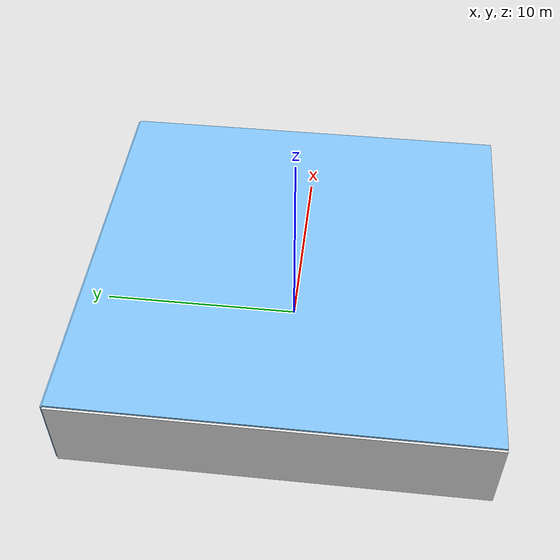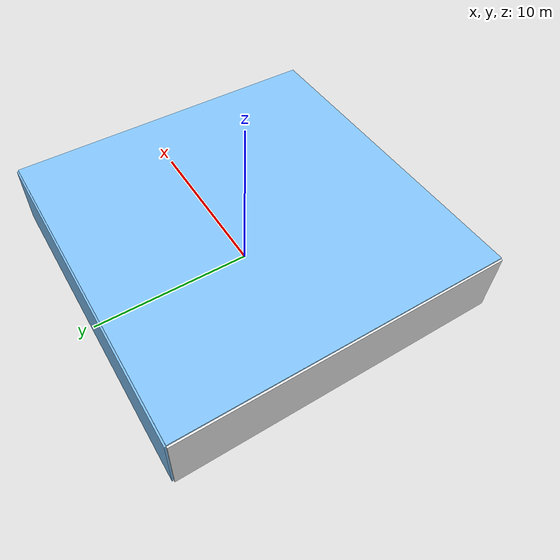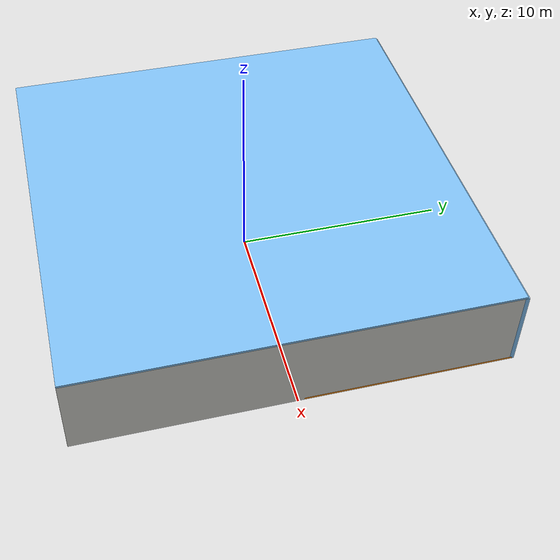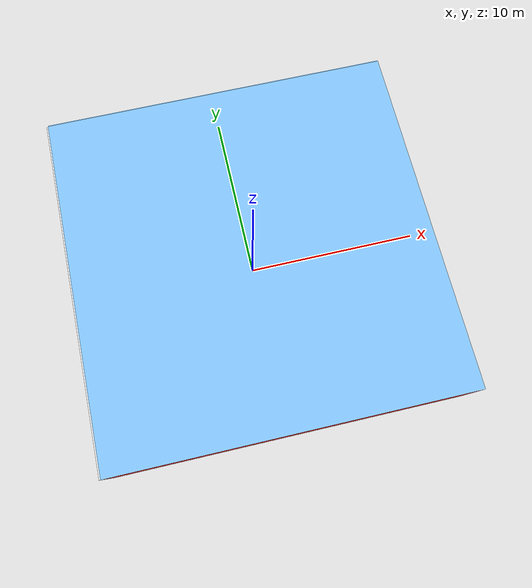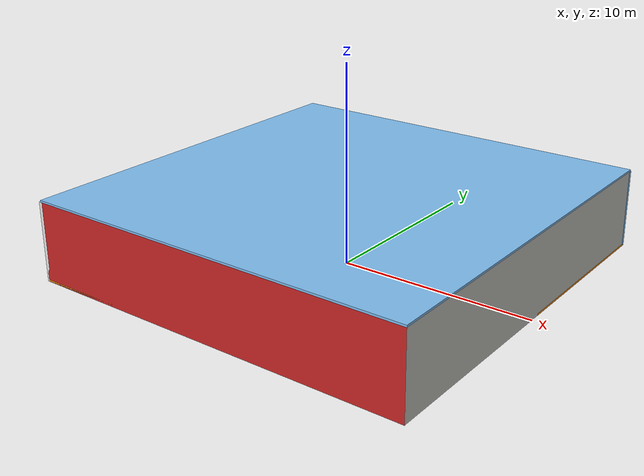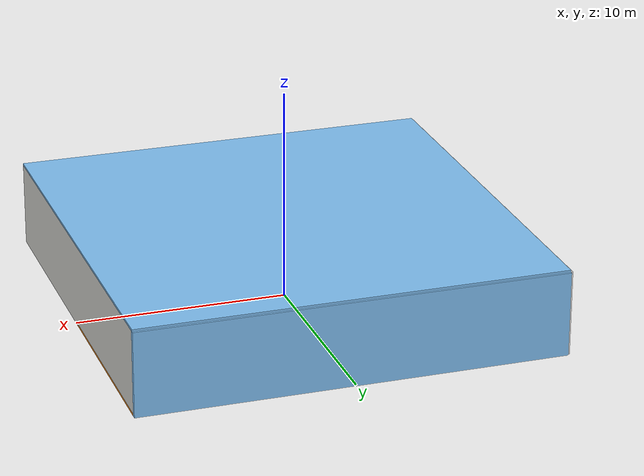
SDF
<sdf version="1.4">
 <world name="default">
  <physics type="ode">
   <max_step_size>0.001</max_step_size>
   <real_time_factor>1</real_time_factor>
   <real_time_update_rate>1000</real_time_update_rate>
   <gravity>0 0 -9.8</gravity>
  </physics>
  <scene><ambient>0.4 0.4 0.4 1</ambient><background>0.7 0.7 0.7 1</background><shadows>1</shadows></scene>
  <model name="Surrounding">
   <static>1</static>
   <link name="Ceiling">
    <collision name="Ceiling_Collision"><geometry><box><size>20 20 0.1</size></box></geometry></collision>
    <visual name="Ceiling_Visual">
     <geometry><box><size>20 20 0.1</size></box></geometry>
     <material>
      <script><uri>file://media/materials/scripts/gazebo.material</uri><name>Gazebo/SkyBlue</name></script>
     </material>
    </visual>
    <pose>0 0 4.05 0 0 0</pose>
   </link>
   <link name="Wall_South">
    <collision name="Wall_South_Collision">
     <geometry><box><size>20 0 4</size></box></geometry>
     <pose>0 0 2 0 -0 0</pose>
    </collision>
    <visual name="Wall_South_Visual">
     <pose>0 0 2 0 -0 0</pose>
     <geometry><box><size>20 0 4</size></box></geometry>
     <material>
      <script><uri>file://media/materials/scripts/gazebo.material</uri><name>Gazebo/Red</name></script>
     </material>
    </visual>
    <velocity_decay><linear>0</linear><angular>0</angular></velocity_decay>
    <pose>0 -10 0 0 -0 0</pose>
   </link>
   <link name="Wall_East">
    <collision name="Wall_21_Collision">
     <geometry><box><size>20 0 4</size></box></geometry>
     <pose>0 0 2 0 -0 0</pose>
    </collision>
    <visual name="Wall_21_Visual">
     <pose>0 0 2 0 -0 0</pose>
     <geometry><box><size>20 0 4</size></box></geometry>
     <material>
      <script><uri>file://media/materials/scripts/gazebo.material</uri><name>Gazebo/CeilingTiled</name></script>
     </material>
    </visual>
    <velocity_decay><linear>0</linear><angular>0</angular></velocity_decay>
    <pose>10 0 0 0 -0 1.5708</pose>
   </link>
   <link name="Wall_North">
    <collision name="Wall_22_Collision">
     <geometry><box><size>20 0.2 4</size></box></geometry>
     <pose>0 0 2 0 -0 0</pose>
    </collision>
    <visual name="Wall_22_Visual">
     <pose>0 0 2 0 -0 0</pose>
     <geometry><box><size>20 0.2 4</size></box></geometry>
     <material>
      <script><uri>file://media/materials/scripts/gazebo.material</uri><name>Gazebo/SkyBlue</name></script>
     </material>
    </visual>
    <velocity_decay><linear>0</linear><angular>0</angular></velocity_decay>
    <pose>0 10 0 0 -0 0</pose>
   </link>
   <link name="Wall_West">
    <collision name="Wall_23_Collision">
     <geometry><box><size>20 0.2 4</size></box></geometry>
     <pose>0 0 2 0 -0 0</pose>
    </collision>
    <visual name="Wall_23_Visual">
     <pose>0 0 2 0 -0 0</pose>
     <geometry><box><size>20 0.2 4</size></box></geometry>
     <material>
      <script><uri>file://media/materials/scripts/gazebo.material</uri><name>Gazebo/White</name></script>
     </material>
    </visual>
    <velocity_decay><linear>0</linear><angular>0</angular></velocity_decay>
    <pose>-10 0 0 0 0 -1.5708</pose>
   </link>
   <link name="Ground_link">
    <collision name="collision">
     <pose>0 0 .05 0 -0 0</pose>
     <geometry><box><size>20 20 0.1</size></box></geometry>
    </collision>
    <visual name="visual">
     <pose>0 0 .05 0 -0 0</pose>
     <geometry><box><size>20 20 0.1</size></box></geometry>
     <material>
      <script><uri>file://media/materials/scripts/gazebo.material</uri><name>Gazebo/Orange</name></script>
     </material>
    </visual>
   </link>
   <static>1</static>
  </model>
  <spherical_coordinates>
   <surface_model>EARTH_WGS84</surface_model>
   <latitude_deg>0</latitude_deg>
   <longitude_deg>0</longitude_deg>
   <elevation>0</elevation>
   <heading_deg>0</heading_deg>
  </spherical_coordinates>
  <light name="lightball_0" type="diffuse">
   <diffuse>0.8 0.8 0.8 1</diffuse>
   <specular>0.2 0.2 0.2 1</specular>
   <attenuation>
    <range>100</range>
    <constant>0.7</constant>
    <linear>0.01</linear>
    <quadratic>0.001</quadratic>
   </attenuation>
   <direction>-0.5 0.1 -0.9</direction>
   <pose>4.27616232386 0.127041661639 3.37777754991 0 0 0</pose>
  </light>
  <light name="lightball_1" type="diffuse">
   <diffuse>0.8 0.8 0.8 1</diffuse>
   <specular>0.2 0.2 0.2 1</specular>
   <attenuation>
    <range>100</range>
    <constant>0.7</constant>
    <linear>0.01</linear>
    <quadratic>0.001</quadratic>
   </attenuation>
   <direction>-0.5 0.1 -0.9</direction>
   <pose>5.62962803652 -5.85556876159 3.06437448426 0 0 0</pose>
  </light>
  <light name="lightball_2" type="diffuse">
   <diffuse>0.8 0.8 0.8 1</diffuse>
   <specular>0.2 0.2 0.2 1</specular>
   <attenuation>
    <range>100</range>
    <constant>0.7</constant>
    <linear>0.01</linear>
    <quadratic>0.001</quadratic>
   </attenuation>
   <direction>-0.5 0.1 -0.9</direction>
   <pose>8.94708337289 -3.64532716017 2.68082275018 0 0 0</pose>
  </light>
  <include>
   <uri>model://textured_shapes</uri>
   <pose>-6.37527620949 -6.46442296126 0 0 0 2.33806716322</pose>
  </include>
  <include>
   <uri>model://construction_cone</uri>
   <pose>-8.09847477379 -5.52531916651 0 0 0 2.68245540514</pose>
  </include>
  <include><uri>model://table</uri><pose>-5.5293775379 -3.57821443683 0 0 0 1.51649525775</pose></include>
  <include>
   <uri>model://robocup_3Dsim_goal</uri>
   <pose>-4.23914134527 1.40276297698 0 0 0 1.78112390745</pose>
  </include>
  <include><uri>model://cabinet</uri><pose>-1.23151926577 -6.81844561439 0 0 0 1.70790803854</pose></include>
  <include><uri>model://cabinet</uri><pose>-1.15402524809 3.40495074231 0 0 0 2.31181734437</pose></include>
  <include>
   <uri>model://textured_shapes</uri>
   <pose>4.6202773755 -1.0636357746 0 0 0 2.23239061507</pose>
  </include>
  <include>
   <uri>model://construction_cone</uri>
   <pose>5.22670940891 2.44839570205 0 0 0 0.35673728155</pose>
  </include>
 </world>
</sdf>

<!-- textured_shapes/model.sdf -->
<sdf version="1.6">
  <model name="textured_shapes">
    <pose>0 0 0.5 0 0 0</pose>
    <link name="box">
      <pose>0 -1.5 0 0 0 0</pose>
      <collision name="collision">
        <geometry>
          <box>
            <size>1 1 1</size>
          </box>
        </geometry>
      </collision>
      <visual name="visual">
        <geometry>
          <box>
            <size>1 1 1</size>
          </box>
        </geometry>
        <material>
          <script>
            <uri>model://../model_source/models/textured_shapes/materials/scripts</uri>
            <uri>model://../model_source/models/textured_shapes/materials/textures</uri>
            <name>TexturedShape/Squares</name>
          </script>
        </material>
      </visual>
    </link>
    <link name="sphere">
      <collision name="collision">
        <geometry>
          <sphere>
            <radius>0.5</radius>
          </sphere>
        </geometry>
      </collision>
      <visual name="visual">
        <geometry>
          <sphere>
            <radius>0.5</radius>
          </sphere>
        </geometry>
        <material>
          <script>
            <uri>model://../model_source/models/textured_shapes/materials/scripts</uri>
            <uri>model://../model_source/models/textured_shapes/materials/textures</uri>
            <name>TexturedShape/Squares</name>
          </script>
        </material>
      </visual>
    </link>
    <link name="cylinder">
      <pose>0 1.5 0 0 0 0</pose>
      <collision name="collision">
        <geometry>
          <cylinder>
            <radius>0.5</radius>
            <length>1</length>
          </cylinder>
        </geometry>
      </collision>
      <visual name="visual">
        <geometry>
          <cylinder>
            <radius>0.5</radius>
            <length>1</length>
          </cylinder>
        </geometry>
        <material>
          <script>
            <uri>model://../model_source/models/textured_shapes/materials/scripts</uri>
            <uri>model://../model_source/models/textured_shapes/materials/textures</uri>
            <name>TexturedShape/Squares</name>
          </script>
        </material>
      </visual>
    </link>
  </model>
</sdf>

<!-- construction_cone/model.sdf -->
<sdf version="1.5">
  <model name="Construction Cone">
    <link name="link">
      <collision name="collision">
        <geometry>
          <mesh>
            <scale>10 10 10</scale>
            <uri>file://isr-testbed/construction_cone/meshes/construction_cone.dae</uri>
          </mesh>
        </geometry>
      </collision>
      <visual name="visual">
        <geometry>
          <mesh>
            <scale>10 10 10</scale>
            <uri>file://isr-testbed/construction_cone/meshes/construction_cone.dae</uri>
          </mesh>
        </geometry>
      </visual>
    </link>
  </model>
</sdf>

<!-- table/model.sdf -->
<sdf version="1.5">
  <model name="table">
    <static>true</static>
    <link name="link">
      <collision name="surface">
        <pose>0 0 1.0 0 0 0</pose>
        <geometry>
          <box>
            <size>1.5 0.8 0.03</size>
          </box>
        </geometry>
        <surface>
          <friction>
            <ode>
              <mu>0.6</mu>
              <mu2>0.6</mu2>
            </ode>
          </friction>
        </surface>
      </collision>
      <visual name="visual1">
        <pose>0 0 1.0 0 0 0</pose>
        <geometry>
          <box>
            <size>1.5 0.8 0.03</size>
          </box>
        </geometry>
        <material>
          <script>
            <uri>model://media/materials/scripts/gazebo.material</uri>
            <name>Gazebo/Wood</name>
          </script>
        </material>
      </visual>
      <collision name="front_left_leg">
        <pose>0.68 0.38 0.5 0 0 0</pose>
        <geometry>
          <cylinder>
            <radius>0.02</radius>
            <length>1.0</length>
          </cylinder>
        </geometry>
      </collision>
      <visual name="front_left_leg">
        <pose>0.68 0.38 0.5 0 0 0</pose>
        <geometry>
          <cylinder>
            <radius>0.02</radius>
            <length>1.0</length>
          </cylinder>
        </geometry>
        <material>
          <script>
            <uri>model://media/materials/scripts/gazebo.material</uri>
            <name>Gazebo/Grey</name>
          </script>
        </material>
      </visual>
      <collision name="front_right_leg">
        <pose>0.68 -0.38 0.5 0 0 0</pose>
        <geometry>
          <cylinder>
            <radius>0.02</radius>
            <length>1.0</length>
          </cylinder>
        </geometry>
      </collision>
      <visual name="front_right_leg">
        <pose>0.68 -0.38 0.5 0 0 0</pose>
        <geometry>
          <cylinder>
            <radius>0.02</radius>
            <length>1.0</length>
          </cylinder>
        </geometry>
        <material>
          <script>
            <uri>model://media/materials/scripts/gazebo.material</uri>
            <name>Gazebo/Grey</name>
          </script>
        </material>
      </visual>
      <collision name="back_right_leg">
        <pose>-0.68 -0.38 0.5 0 0 0</pose>
        <geometry>
          <cylinder>
            <radius>0.02</radius>
            <length>1.0</length>
          </cylinder>
        </geometry>
      </collision>
      <visual name="back_right_leg">
        <pose>-0.68 -0.38 0.5 0 0 0</pose>
        <geometry>
          <cylinder>
            <radius>0.02</radius>
            <length>1.0</length>
          </cylinder>
        </geometry>
        <material>
          <script>
            <uri>model://media/materials/scripts/gazebo.material</uri>
            <name>Gazebo/Grey</name>
          </script>
        </material>
      </visual>
      <collision name="back_left_leg">
        <pose>-0.68 0.38 0.5 0 0 0</pose>
        <geometry>
          <cylinder>
            <radius>0.02</radius>
            <length>1.0</length>
          </cylinder>
        </geometry>
      </collision>
      <visual name="back_left_leg">
        <pose>-0.68 0.38 0.5 0 0 0</pose>
        <geometry>
          <cylinder>
            <radius>0.02</radius>
            <length>1.0</length>
          </cylinder>
        </geometry>
        <material>
          <script>
            <uri>model://media/materials/scripts/gazebo.material</uri>
            <name>Gazebo/Grey</name>
          </script>
        </material>
      </visual>
    </link>
  </model>
</sdf>

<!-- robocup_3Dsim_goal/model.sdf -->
<sdf version="1.5">
  <model name="robocup_3d_goal">
    <static>true</static>
    <link name="left_post">
      <pose>0 1.05 0.45 0 0 0</pose>
      <collision name="collision">
        <geometry>
          <cylinder>
            <radius>0.05</radius>
            <length>0.9</length>
          </cylinder>
        </geometry>
      </collision>
      <visual name="visual">
        <geometry>
          <cylinder>
            <radius>0.05</radius>
            <length>0.9</length>
          </cylinder>
        </geometry>
        <material>
          <script>
            <uri>file://media/materials/scripts/gazebo.material</uri>
            <name>Gazebo/ZincYellow</name>
          </script>
        </material>
      </visual>
    </link>
    <link name="left_support_horiz_lower">
      <pose>0.30 1.05 0.01 0 0 0</pose>
      <collision name="collision">
        <geometry>
          <box>
            <size>0.50 0.02 0.02</size>
          </box>
        </geometry>
      </collision>
      <visual name="visual">
        <geometry>
          <box>
            <size>0.50 0.02 0.02</size>
          </box>
        </geometry>
        <material>
          <script>
            <uri>file://media/materials/scripts/gazebo.material</uri>
            <name>Gazebo/White</name>
          </script>
        </material>
      </visual>
    </link>
    <link name="left_support_horiz_upper">
      <pose>0.30 1.05 0.79 0 0 0</pose>
      <collision name="collision">
        <geometry>
          <box>
            <size>0.50 0.02 0.02</size>
          </box>
        </geometry>
      </collision>
      <visual name="visual">
        <geometry>
          <box>
            <size>0.50 0.02 0.02</size>
          </box>
        </geometry>
        <material>
          <script>
            <uri>file://media/materials/scripts/gazebo.material</uri>
            <name>Gazebo/White</name>
          </script>
        </material>
      </visual>
    </link>
    <link name="left_support_vertical">
      <pose>0.56 1.05 0.4 0 1.5708 0</pose>
      <collision name="collision">
        <geometry>
          <box>
            <size>0.80 0.02 0.02</size>
          </box>
        </geometry>
      </collision>
      <visual name="visual">
        <geometry>
          <box>
            <size>0.80 0.02 0.02</size>
          </box>
        </geometry>
        <material>
          <script>
            <uri>file://media/materials/scripts/gazebo.material</uri>
            <name>Gazebo/White</name>
          </script>
        </material>
      </visual>
    </link>
    <link name="right_support_horiz_lower">
      <pose>0.30 -1.05 0.01 0 0 0</pose>
      <collision name="collision">
        <geometry>
          <box>
            <size>0.50 0.02 0.02</size>
          </box>
        </geometry>
      </collision>
      <visual name="visual">
        <geometry>
          <box>
            <size>0.50 0.02 0.02</size>
          </box>
        </geometry>
        <material>
          <script>
            <uri>file://media/materials/scripts/gazebo.material</uri>
            <name>Gazebo/White</name>
          </script>
        </material>
      </visual>
    </link>
    <link name="right_support_horiz_upper">
      <pose>0.30 -1.05 0.79 0 0 0</pose>
      <collision name="collision">
        <geometry>
          <box>
            <size>0.50 0.02 0.02</size>
          </box>
        </geometry>
      </collision>
      <visual name="visual">
        <geometry>
          <box>
            <size>0.50 0.02 0.02</size>
          </box>
        </geometry>
        <material>
          <script>
            <uri>file://media/materials/scripts/gazebo.material</uri>
            <name>Gazebo/White</name>
          </script>
        </material>
      </visual>
    </link>
    <link name="right_support_vertical">
      <pose>0.56 -1.05 0.4 0 1.5708 0</pose>
      <collision name="collision">
        <geometry>
          <box>
            <size>0.80 0.02 0.02</size>
          </box>
        </geometry>
      </collision>
      <visual name="visual">
        <geometry>
          <box>
            <size>0.80 0.02 0.02</size>
          </box>
        </geometry>
        <material>
          <script>
            <uri>file://media/materials/scripts/gazebo.material</uri>
            <name>Gazebo/White</name>
          </script>
        </material>
      </visual>
    </link>
    <link name="center_support_horiz_lower">
      <pose>0.56 0 0.01 0 1.5708 0</pose>
      <collision name="collision">
        <geometry>
          <box>
            <size>0.02 2.08 0.02</size>
          </box>
        </geometry>
      </collision>
      <visual name="visual">
        <geometry>
          <box>
            <size>0.02 2.08 0.02</size>
          </box>
        </geometry>
        <material>
          <script>
            <uri>file://media/materials/scripts/gazebo.material</uri>
            <name>Gazebo/White</name>
          </script>
        </material>
      </visual>
    </link>
    <link name="center_support_horiz_upper">
      <pose>0.56 0 0.79 0 1.5708 0</pose>
      <collision name="collision">
        <geometry>
          <box>
            <size>0.02 2.08 0.02</size>
          </box>
        </geometry>
      </collision>
      <visual name="visual">
        <geometry>
          <box>
            <size>0.02 2.08 0.02</size>
          </box>
        </geometry>
        <material>
          <script>
            <uri>file://media/materials/scripts/gazebo.material</uri>
            <name>Gazebo/White</name>
          </script>
        </material>
      </visual>
    </link>
    <link name="right_post">
      <pose>0 -1.05 0.45 0 0 0</pose>
      <collision name="collision">
        <geometry>
          <cylinder>
            <radius>0.05</radius>
            <length>0.9</length>
          </cylinder>
        </geometry>
      </collision>
      <visual name="visual">
        <geometry>
          <cylinder>
            <radius>0.05</radius>
            <length>0.9</length>
          </cylinder>
        </geometry>
        <material>
          <script>
            <uri>file://media/materials/scripts/gazebo.material</uri>
            <name>Gazebo/ZincYellow</name>
          </script>
        </material>
      </visual>
    </link>
    <link name="crossbar">
      <pose>0 0 0.85 1.57 1.57 0</pose>
      <collision name="collision">
        <geometry>
          <cylinder>
            <radius>0.05</radius>
            <length>2.0</length>
          </cylinder>
        </geometry>
      </collision>
      <visual name="visual">
        <geometry>
          <cylinder>
            <radius>0.05</radius>
            <length>2.0</length>
          </cylinder>
        </geometry>
        <material>
          <script>
            <uri>file://media/materials/scripts/gazebo.material</uri>
            <name>Gazebo/ZincYellow</name>
          </script>
        </material>
      </visual>
    </link>
    <link name="center_net">
      <pose>0.56 0 0.40 0 0 0</pose>
      <collision name="collision">
        <geometry>
          <box>
            <size>0.01 2.1 0.80</size>
          </box>
        </geometry>
      </collision>
      <visual name="visual">
        <geometry>
          <box>
            <size>0.01 2.1 0.80</size>
          </box>
        </geometry>
        <material>
          <script>
            <uri>model://../model_source/models/robocup09_spl_field/materials/scripts/</uri>
            <uri>model://../model_source/models/robocup09_spl_field/materials/textures/</uri>
            <name>RoboCup/Net</name>
          </script>
        </material>
      </visual>
    </link>
    <link name="left_net">
      <pose>0.30 1.05 0.40 0 0 0</pose>
      <collision name="collision">
        <geometry>
          <box>
            <size>0.50 0.01 0.76</size>
          </box>
        </geometry>
      </collision>
      <visual name="visual">
        <geometry>
          <box>
            <size>0.50 0.01 0.76</size>
          </box>
        </geometry>
        <material>
          <script>
            <uri>model://../model_source/models/robocup09_spl_field/materials/scripts/</uri>
            <uri>model://../model_source/models/robocup09_spl_field/materials/textures/</uri>
            <name>RoboCup/Net</name>
          </script>
        </material>
      </visual>
    </link>
    <link name="right_net">
      <pose>0.30 -1.05 0.40 0 0 0</pose>
      <collision name="collision">
        <geometry>
          <box>
            <size>0.50 0.01 0.76</size>
          </box>
        </geometry>
      </collision>
      <visual name="visual">
        <geometry>
          <box>
            <size>0.50 0.01 0.76</size>
          </box>
        </geometry>
        <material>
          <script>
            <uri>model://../model_source/models/robocup09_spl_field/materials/scripts/</uri>
            <uri>model://../model_source/models/robocup09_spl_field/materials/textures/</uri>
            <name>RoboCup/Net</name>
          </script>
        </material>
      </visual>
    </link>
  </model>
</sdf>

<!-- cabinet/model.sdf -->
<sdf version="1.5">
  <model name="cabinet">
    <static>true</static>
    <link name="cabinet_bottom_plate">
      <inertial>
        <pose>0 0 -1 0 0 0</pose>
        <inertia>
          <ixx>2.050000</ixx>
          <ixy>0</ixy>
          <ixz>0</ixz>
          <iyy>2.050000</iyy>
          <iyz>0</iyz>
          <izz>2.050000</izz>
        </inertia>
        <mass>25.000000</mass>
      </inertial>
      <collision name="cabinet_bottom_plate_geom">
        <pose>0 0 0.010000 0 0 0</pose>
        <geometry>
          <box>
            <size>0.450000 0.450000 0.020000</size>
          </box>
        </geometry>
      </collision>
      <visual name="cabinet_bottom_plate_geom_visual">
        <pose>0 0 0.010000 0 0 0</pose>
        <geometry>
          <box>
            <size>0.450000 0.450000 0.020000</size>
          </box>
        </geometry>
        <material>
          <script>
            <uri>model://media/materials/scripts/gazebo.material</uri>
            <name>Gazebo/Wood</name>
          </script>
        </material>
      </visual>
      <collision name="cabinet_bottom_plate_geom_cabinet_back_plate">
        <pose>0.235000 0 0.510000 0 0 0</pose>
        <geometry>
          <box>
            <size>0.020000 0.450000 1.020000</size>
          </box>
        </geometry>
      </collision>
      <visual name="cabinet_bottom_plate_geom_cabinet_back_plate_visual">
        <pose>0.235000 0 0.510000 0 0 0</pose>
        <geometry>
          <box>
            <size>0.020000 0.450000 1.020000</size>
          </box>
        </geometry>
        <material>
          <script>
            <uri>model://media/materials/scripts/gazebo.material</uri>
            <name>Gazebo/Wood</name>
          </script>
        </material>
      </visual>
      <collision name="cabinet_bottom_plate_geom_cabinet_left_plate">
        <pose>0 0.235000 0.510000 0 0 0</pose>
        <geometry>
          <box>
            <size>0.450000 0.020000 1.020000</size>
          </box>
        </geometry>
      </collision>
      <visual name="cabinet_bottom_plate_geom_cabinet_left_plate_visual">
        <pose>0 0.235000 0.510000 0 0 0</pose>
        <geometry>
          <box>
            <size>0.450000 0.020000 1.020000</size>
          </box>
        </geometry>
        <material>
          <script>
            <uri>model://media/materials/scripts/gazebo.material</uri>
            <name>Gazebo/Wood</name>
          </script>
        </material>
      </visual>
      <collision name="cabinet_bottom_plate_geom_cabinet_middle_plate">
        <pose>0 0 0.510000 0 0 0</pose>
        <geometry>
          <box>
            <size>0.450000 0.450000 0.020000</size>
          </box>
        </geometry>
      </collision>
      <visual name="cabinet_bottom_plate_geom_cabinet_middle_plate_visual">
        <pose>0 0 0.510000 0 0 0</pose>
        <geometry>
          <box>
            <size>0.450000 0.450000 0.020000</size>
          </box>
        </geometry>
        <material>
          <script>
            <uri>model://media/materials/scripts/gazebo.material</uri>
            <name>Gazebo/Wood</name>
          </script>
        </material>
      </visual>
      <collision name="cabinet_bottom_plate_geom_cabinet_right_plate">
        <pose>0 -0.235000 0.510000 0 0 0</pose>
        <geometry>
          <box>
            <size>0.450000 0.020000 1.020000</size>
          </box>
        </geometry>
      </collision>
      <visual name="cabinet_bottom_plate_geom_cabinet_right_plate_visual">
        <pose>0 -0.235000 0.510000 0 0 0</pose>
        <geometry>
          <box>
            <size>0.450000 0.020000 1.020000</size>
          </box>
        </geometry>
        <material>
          <script>
            <uri>model://media/materials/scripts/gazebo.material</uri>
            <name>Gazebo/Wood</name>
          </script>
        </material>
      </visual>
      <collision name="cabinet_bottom_plate_geom_cabinet_top_plate">
        <pose>0 0 1.010000 0 0 0</pose>
        <geometry>
          <box>
            <size>0.450000 0.450000 0.020000</size>
          </box>
        </geometry>
      </collision>
      <visual name="cabinet_bottom_plate_geom_cabinet_top_plate_visual">
        <pose>0 0 1.010000 0 0 0</pose>
        <geometry>
          <box>
            <size>0.450000 0.450000 0.020000</size>
          </box>
        </geometry>
        <material>
          <script>
            <uri>model://media/materials/scripts/gazebo.material</uri>
            <name>Gazebo/Wood</name>
          </script>
        </material>
      </visual>
    </link>
  </model>
</sdf>
